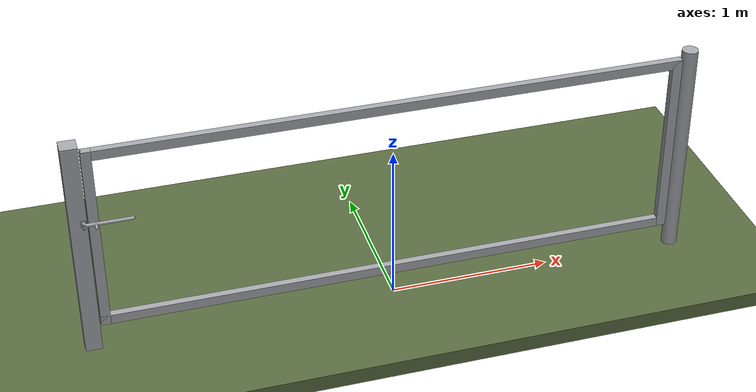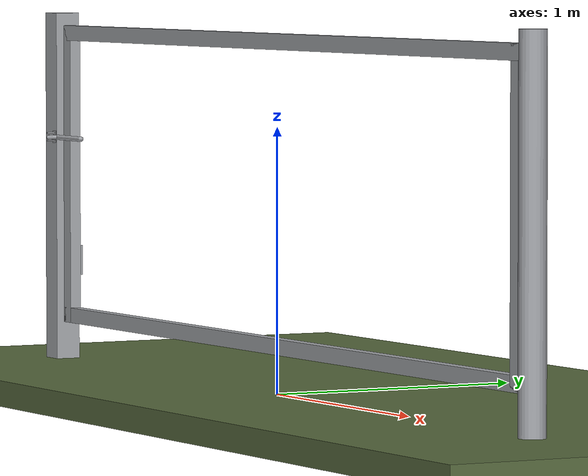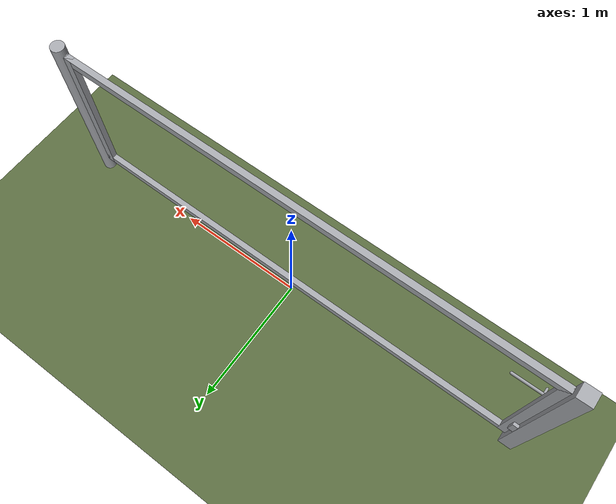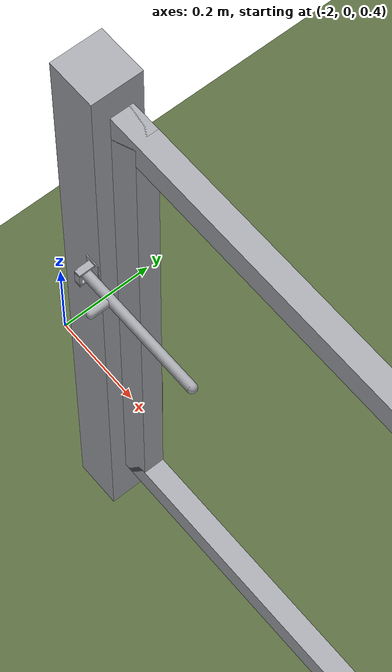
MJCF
<?xml version="1.0" ?>
<mujoco model="db0455_gate_swing_minimal">
  <compiler angle="radian" meshdir="../../hardware" texturedir="../../textures" autolimits="true" inertiafromgeom="false"/>
  <option timestep="0.002" integrator="implicitfast" cone="elliptic" impratio="10" noslip_iterations="3">
    <flag multiccd="enable"/>
  </option>
  <size memory="16M"/>
  <default>
    <geom condim="4" solref="0.005 1" solimp="0.95 0.99 0.001"/>
    <joint solreflimit="0.005 1" solimplimit="0.95 0.99 0.001"/>
    <tendon solreflimit="0.005 1"/>
    <equality solref="0.002 1"/>
  </default>
  <visual>
    <headlight ambient="0.4 0.4 0.4" diffuse="0.7 0.7 0.7" specular="0.2 0.2 0.2"/>
    <quality shadowsize="4096"/>
    <map znear="0.01" zfar="60"/>
  </visual>
  <asset>
    <material name="mat_floor" rgba="0.35 0.42 0.25 1" specular="0.2" shininess="0.15" reflectance="0"/>
    <material name="mat_wall" rgba="0.78 0.76 0.7 1" specular="0.2" shininess="0.1" reflectance="0"/>
    <material name="mat_leaf" rgba="0.65 0.66 0.68 1" specular="0.74" shininess="0.5" reflectance="0.36"/>
    <material name="mat_hinge" rgba="0.65 0.66 0.68 1" specular="0.74" shininess="0.5" reflectance="0.36"/>
    <material name="mat_op_steel_galvanized" rgba="0.65 0.66 0.68 1" specular="0.74" shininess="0.5" reflectance="0.36"/>
    <material name="mat_frame" rgba="0.65 0.66 0.68 1" specular="0.74" shininess="0.5" reflectance="0.36"/>
    <material name="mat_fence" rgba="0.7 0.45 0.32 1" specular="0.2" shininess="0.4" reflectance="0"/>
    <texture name="skybox" type="skybox" builtin="gradient" rgb1="0.6 0.7 0.85" rgb2="0.9 0.92 0.95" width="256" height="256"/>
  </asset>
  <worldbody>
    <light name="sun" pos="1.5 -2.5 4" dir="-0.3 0.5 -0.8" directional="true" diffuse="0.8 0.8 0.8" specular="0.3 0.3 0.3" castshadow="true"/>
    <light name="fill" pos="-1.5 2.5 3" dir="0.3 -0.5 -0.7" directional="true" diffuse="0.35 0.35 0.4" castshadow="false"/>
    <camera name="robot_view" pos="0 -4.01125 1.73315" xyaxes="1 0 0 0 0.26963 0.962964" fovy="52"/>
    <camera name="far_view" pos="0 4.01125 1.73315" xyaxes="-1 0 0 0 -0.26963 0.962964" fovy="52"/>
    <camera name="iso" pos="-3.04855 -3.36945 2.37495" xyaxes="0.741536 -0.670913 0 0.242917 0.268487 0.932151" fovy="46"/>
    <camera name="detail_handle" pos="-1.579 -0.92 1.18" xyaxes="0.97561 0.219512 0 -0.070934 0.315262 0.94635" fovy="38"/>
    <geom name="floor" type="box" size="6 6 0.05" pos="0 0 -0.05" material="mat_floor" group="0" contype="1" conaffinity="1" friction="0.8 0.005 0.0001" density="2400"/>
    <geom name="leaf_slide_bolt_keeper_leg_n" type="box" size="0.007 0.0025 0.017" pos="-1.826 -0.067 0.9155" quat="0 0 -0.707107 0.707107" material="mat_op_steel_galvanized" group="0" contype="1" conaffinity="1" friction="0.6 0.005 0.0001" density="7800"/>
    <geom name="leaf_slide_bolt_keeper_leg_p" type="box" size="0.007 0.0025 0.017" pos="-1.826 -0.067 0.8845" quat="0 0 -0.707107 0.707107" material="mat_op_steel_galvanized" group="0" contype="1" conaffinity="1" friction="0.6 0.005 0.0001" density="7800"/>
    <geom name="leaf_slide_bolt_keeper_bridge" type="box" size="0.007 0.018 0.0025" pos="-1.826 -0.0815 0.9" quat="0 0 -0.707107 0.707107" material="mat_op_steel_galvanized" group="0" contype="1" conaffinity="1" friction="0.6 0.005 0.0001" density="7800"/>
    <geom name="leaf_slide_bolt_keeper_base" type="box" size="0.015 0.024 0.001" pos="-1.826 -0.051 0.9" quat="0 0 -0.707107 0.707107" material="mat_op_steel_galvanized" group="1" contype="0" conaffinity="0" density="7800"/>
    <geom name="post_hinge" type="cylinder" size="0.05 0.7" pos="1.856 0 0.7" material="mat_frame" group="0" contype="1" conaffinity="1" friction="0.6 0.005 0.0001" density="800"/>
    <geom name="post_latch" type="box" size="0.05 0.05 0.7" pos="-1.856 0 0.7" material="mat_frame" group="0" contype="1" conaffinity="1" friction="0.6 0.005 0.0001" density="800"/>
    <geom name="gate_stop" type="box" size="0.02 0.012 0.06" pos="-1.786 0.0345 0.4" material="mat_frame" group="0" contype="1" conaffinity="1" friction="0.6 0.005 0.0001" density="800"/>
    <site name="approach_point" pos="0 -1.5 0" quat="1 0 0 0" size="0.05" rgba="0.2 0.9 0.2 0.5" group="4"/>
    <site name="goal_point" pos="0 1.5 0" quat="1 0 0 0" size="0.05" rgba="0.2 0.9 0.2 0.5" group="4"/>
    <site name="door_plane_center" pos="0 0 0.61" quat="1 0 0 0" size="0.02" rgba="0.2 0.9 0.2 0.5" group="4"/>
    <body name="leaf" pos="1.806 0 0">
      <inertial pos="-1.803 0 0.75" mass="59.645875" quat="0.707107 0.707107 0 0" diaginertia="7.171773477 64.441629264 71.593272258"/>
      <joint name="leaf_hinge" type="hinge" axis="0 0 1" pos="-0.003 -0.05 0" limited="true" range="0 1.570796" damping="36.450638" frictionloss="24.530182" armature="0.02"/>
      <geom name="leaf_slab_col" type="box" size="1.8 0.0225 0.6" pos="-1.803 0 0.75" material="mat_leaf" group="3" contype="1" conaffinity="1" rgba="0.8 0.3 0.3 0.25" friction="0.42 0.005 0.0001" density="1"/>
      <geom name="leaf_rail_b" type="box" size="1.8 0.0225 0.03" pos="-1.803 0 0.18" material="mat_leaf" group="1" contype="0" conaffinity="0" density="1"/>
      <geom name="leaf_rail_t" type="box" size="1.8 0.0225 0.03" pos="-1.803 0 1.32" material="mat_leaf" group="1" contype="0" conaffinity="0" density="1"/>
      <geom name="leaf_stile_h" type="box" size="0.03 0.0225 0.6" pos="-0.033 0 0.75" material="mat_leaf" group="1" contype="0" conaffinity="0" density="1"/>
      <geom name="leaf_stile_l" type="box" size="0.03 0.0225 0.6" pos="-3.573 0 0.75" material="mat_leaf" group="1" contype="0" conaffinity="0" density="1"/>
      <site name="leaf_edge_mid" pos="-3.603 0 0.6" quat="1 0 0 0" size="0.02" rgba="0.2 0.9 0.2 0.5" group="4"/>
      <body name="leaf_slide_bolt" pos="-3.603 -0.066 0.9">
        <inertial pos="0.102695 -0.00222 0" mass="0.793903" quat="-0.010462 0 0 0.999945" diaginertia="0.000086646 0.005537364 0.005586021"/>
        <joint name="leaf_slide_bolt_slide" type="slide" axis="1 0 0" limited="true" range="0 0.08" damping="1" frictionloss="3" armature="0.1"/>
        <geom name="leaf_slide_bolt_rod" type="capsule" size="0.01 0.14" pos="0.109 0 0" quat="0.707107 0 -0.707107 0" material="mat_op_steel_galvanized" group="0" contype="1" conaffinity="1" friction="0.6 0.005 0.0001" density="7850"/>
        <geom name="leaf_slide_bolt_knob" type="capsule" size="0.008 0.017" pos="0.038 -0.025 0" quat="0.707107 0.707107 0 0" material="mat_op_steel_galvanized" group="0" contype="1" conaffinity="1" friction="0.6 0.005 0.0001" density="7850"/>
        <site name="leaf_grip_n" pos="0.038 -0.054 0" quat="1 0 0 0" size="0.012" rgba="0.2 0.9 0.2 0.5" group="4"/>
      </body>
    </body>
  </worldbody>
  <sensor>
    <jointpos name="leaf_hinge_pos" joint="leaf_hinge"/>
    <jointvel name="leaf_hinge_vel" joint="leaf_hinge"/>
    <jointpos name="leaf_slide_bolt_slide_pos" joint="leaf_slide_bolt_slide"/>
    <jointvel name="leaf_slide_bolt_slide_vel" joint="leaf_slide_bolt_slide"/>
  </sensor>
</mujoco>
